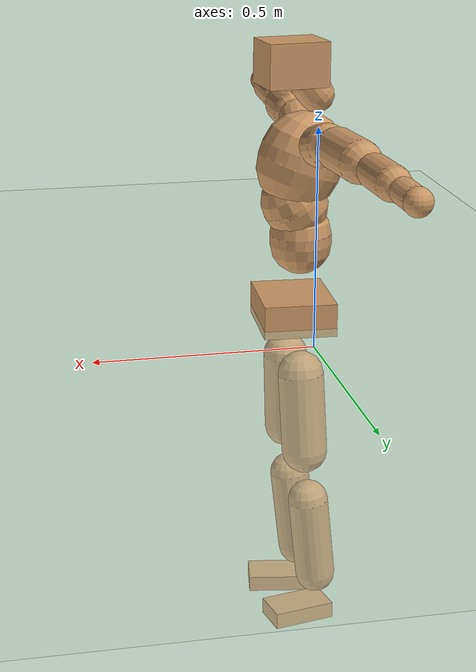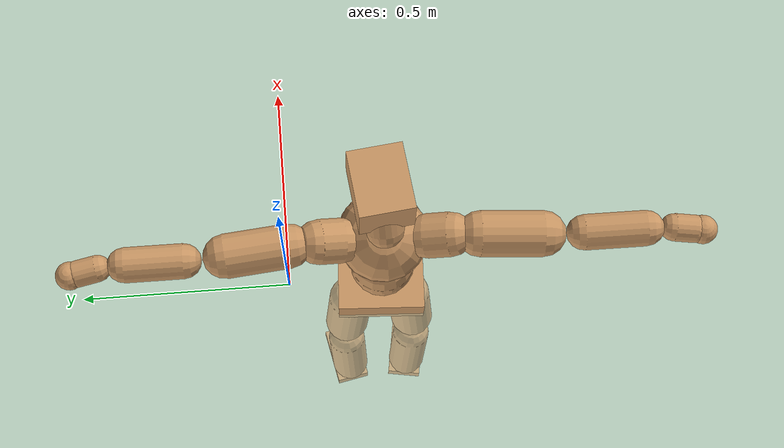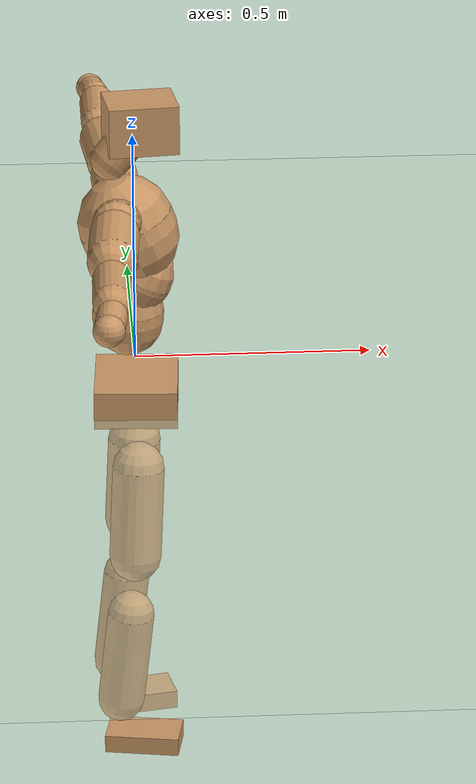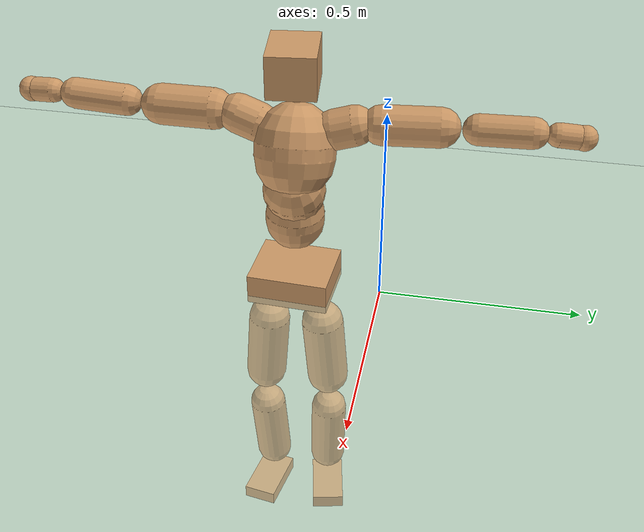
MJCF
<mujoco model="humanoid">
  <compiler coordinate="local" angle="radian"/>
  <default>
    <joint damping="0.0" armature="0.01" stiffness="0.0" limited="true"/>
    <geom conaffinity="1" condim="3" contype="7" margin="0.001" rgba="0.8 0.6 .4 1"/>
  </default>
  <asset>
    <texture type="skybox" builtin="gradient" rgb1=".4 .5 .6" rgb2="0 0 0" width="100" height="100"/>
    <texture builtin="flat" height="1278" mark="cross" markrgb="1 1 1" name="texgeom" random="0.01" rgb1="0.8 0.6 0.4" rgb2="0.8 0.6 0.4" type="cube" width="127"/>
    <texture builtin="checker" height="100" name="texplane" rgb1="0 0 0" rgb2="0.8 0.8 0.8" type="2d" width="100"/>
    <material name="MatPlane" reflectance="0.5" shininess="1" specular="1" texrepeat="60 60" texture="texplane"/>
    <material name="geom" texture="texgeom" texuniform="true"/>
  </asset>
  <worldbody>
    <light cutoff="100" diffuse="1 1 1" dir="-0 0 -1.3" directional="true" exponent="1" pos="0 0 1.3" specular=".1 .1 .1"/>
    <geom conaffinity="1" condim="3" name="floor" pos="0 0 0" rgba="0.8 0.9 0.8 1" size="100 100 .2" type="plane" material="MatPlane"/>
    <body name="Pelvis" pos="-0.0005 -0.2202 0.0305">
      <freejoint name="Pelvis"/>
      <geom type="box" contype="1" conaffinity="1" density="500" pos="-0.0047 0.0003 -0.0126" size="0.0856 0.1019 0.0393" quat="0.9996 0.0000 0.0000 -0.0265" name="Pelvis"/>
      <body name="L_Hip" pos="-0.0053 0.0674 -0.0881">
        <joint name="L_Hip_x" type="hinge" pos="0 0 0" axis="1 0 0" stiffness="800" damping="80" armature="0.02" range="-180.0000 180.0000"/>
        <joint name="L_Hip_y" type="hinge" pos="0 0 0" axis="0 1 0" stiffness="800" damping="80" armature="0.02" range="-180.0000 180.0000"/>
        <joint name="L_Hip_z" type="hinge" pos="0 0 0" axis="0 0 1" stiffness="800" damping="80" armature="0.02" range="-180.0000 180.0000"/>
        <geom type="capsule" contype="1" conaffinity="1" density="500" fromto="-0.0029 0.0045 -0.0641 -0.0118 0.0179 -0.2566" size="0.0547" name="L_Hip"/>
        <body name="L_Knee" pos="-0.0147 0.0224 -0.3207">
          <joint name="L_Knee_x" type="hinge" pos="0 0 0" axis="1 0 0" stiffness="800" damping="80" armature="0.02" range="-180.0000 180.0000"/>
          <joint name="L_Knee_y" type="hinge" pos="0 0 0" axis="0 1 0" stiffness="800" damping="80" armature="0.02" range="-180.0000 180.0000"/>
          <joint name="L_Knee_z" type="hinge" pos="0 0 0" axis="0 0 1" stiffness="800" damping="80" armature="0.02" range="-180.0000 180.0000"/>
          <geom type="capsule" contype="1" conaffinity="1" density="500" fromto="-0.0078 -0.0024 -0.0682 -0.0313 -0.0094 -0.2730" size="0.0485" name="L_Knee"/>
          <body name="L_Ankle" pos="-0.0391 -0.0118 -0.3412">
            <joint name="L_Ankle_x" type="hinge" pos="0 0 0" axis="1 0 0" stiffness="800" damping="80" armature="0.02" range="-180.0000 180.0000"/>
            <joint name="L_Ankle_y" type="hinge" pos="0 0 0" axis="0 1 0" stiffness="800" damping="80" armature="0.02" range="-180.0000 180.0000"/>
            <joint name="L_Ankle_z" type="hinge" pos="0 0 0" axis="0 0 1" stiffness="800" damping="80" armature="0.02" range="-180.0000 180.0000"/>
            <geom type="box" contype="1" conaffinity="1" density="500" pos="0.0533 0.0106 -0.0250" size="0.0756 0.0436 0.0198" quat="0.9952 0.0000 0.0000 0.0982" name="L_Ankle"/>
            <body name="L_Toe" pos="0.1065 0.0212 -0.05">
              <joint name="L_Toe_x" type="hinge" pos="0 0 0" axis="1 0 0" stiffness="500" damping="50" armature="0.02" range="-180.0000 180.0000"/>
              <joint name="L_Toe_y" type="hinge" pos="0 0 0" axis="0 1 0" stiffness="500" damping="50" armature="0.02" range="-180.0000 180.0000"/>
              <joint name="L_Toe_z" type="hinge" pos="0 0 0" axis="0 0 1" stiffness="500" damping="50" armature="0.02" range="-180.0000 180.0000"/>
              <geom type="box" contype="1" conaffinity="1" density="500" pos="0.0000 0.0000 0.0241" size="0.0009 0.0022 0.0009" quat="0.9945 0.0000 0.0000 0.1052" name="L_Toe"/>
            </body>
          </body>
        </body>
      </body>
      <body name="R_Hip" pos="-0.0017 -0.0649 -0.0889">
        <joint name="R_Hip_x" type="hinge" pos="0 0 0" axis="1 0 0" stiffness="800" damping="80" armature="0.02" range="-180.0000 180.0000"/>
        <joint name="R_Hip_y" type="hinge" pos="0 0 0" axis="0 1 0" stiffness="800" damping="80" armature="0.02" range="-180.0000 180.0000"/>
        <joint name="R_Hip_z" type="hinge" pos="0 0 0" axis="0 0 1" stiffness="800" damping="80" armature="0.02" range="-180.0000 180.0000"/>
        <geom type="capsule" contype="1" conaffinity="1" density="500" fromto="-0.0031 -0.0055 -0.0652 -0.0123 -0.0220 -0.2607" size="0.054" name="R_Hip"/>
        <body name="R_Knee" pos="-0.0154 -0.0275 -0.3258">
          <joint name="R_Knee_x" type="hinge" pos="0 0 0" axis="1 0 0" stiffness="800" damping="80" armature="0.02" range="-180.0000 180.0000"/>
          <joint name="R_Knee_y" type="hinge" pos="0 0 0" axis="0 1 0" stiffness="800" damping="80" armature="0.02" range="-180.0000 180.0000"/>
          <joint name="R_Knee_z" type="hinge" pos="0 0 0" axis="0 0 1" stiffness="800" damping="80" armature="0.02" range="-180.0000 180.0000"/>
          <geom type="capsule" contype="1" conaffinity="1" density="500" fromto="-0.0076 0.0028 -0.0687 -0.0303 0.0113 -0.2749" size="0.0488" name="R_Knee"/>
          <body name="R_Ankle" pos="-0.0379 0.0141 -0.3436">
            <joint name="R_Ankle_x" type="hinge" pos="0 0 0" axis="1 0 0" stiffness="800" damping="80" armature="0.02" range="-180.0000 180.0000"/>
            <joint name="R_Ankle_y" type="hinge" pos="0 0 0" axis="0 1 0" stiffness="800" damping="80" armature="0.02" range="-180.0000 180.0000"/>
            <joint name="R_Ankle_z" type="hinge" pos="0 0 0" axis="0 0 1" stiffness="800" damping="80" armature="0.02" range="-180.0000 180.0000"/>
            <geom type="box" contype="1" conaffinity="1" density="500" pos="0.0552 -0.0095 -0.0212" size="0.0781 0.0448 0.0192" quat="0.9964 0.0000 0.0000 -0.0848" name="R_Ankle"/>
            <body name="R_Toe" pos="0.1104 -0.0189 -0.0424">
              <joint name="R_Toe_x" type="hinge" pos="0 0 0" axis="1 0 0" stiffness="500" damping="50" armature="0.02" range="-180.0000 180.0000"/>
              <joint name="R_Toe_y" type="hinge" pos="0 0 0" axis="0 1 0" stiffness="500" damping="50" armature="0.02" range="-180.0000 180.0000"/>
              <joint name="R_Toe_z" type="hinge" pos="0 0 0" axis="0 0 1" stiffness="500" damping="50" armature="0.02" range="-180.0000 180.0000"/>
              <geom type="box" contype="1" conaffinity="1" density="500" pos="0.0000 0.0000 0.0226" size="0.001 0.0023 0.001" quat="0.9972 0.0000 0.0000 -0.0746" name="R_Toe"/>
            </body>
          </body>
        </body>
      </body>
      <body name="Torso" pos="-0.0214 -0.0009 0.1016">
        <joint name="Torso_x" type="hinge" pos="0 0 0" axis="1 0 0" stiffness="1000" damping="100" armature="0.02" range="-180.0000 180.0000"/>
        <joint name="Torso_y" type="hinge" pos="0 0 0" axis="0 1 0" stiffness="1000" damping="100" armature="0.02" range="-180.0000 180.0000"/>
        <joint name="Torso_z" type="hinge" pos="0 0 0" axis="0 0 1" stiffness="1000" damping="100" armature="0.02" range="-180.0000 180.0000"/>
        <geom type="capsule" contype="1" conaffinity="1" density="500" fromto="0.0018 0.0014 0.0719 0.0012 0.0010 0.0479" size="0.0732" name="Torso"/>
        <body name="Spine" pos="0.003 0.0024 0.1198">
          <joint name="Spine_x" type="hinge" pos="0 0 0" axis="1 0 0" stiffness="1000" damping="100" armature="0.02" range="-180.0000 180.0000"/>
          <joint name="Spine_y" type="hinge" pos="0 0 0" axis="0 1 0" stiffness="1000" damping="100" armature="0.02" range="-180.0000 180.0000"/>
          <joint name="Spine_z" type="hinge" pos="0 0 0" axis="0 0 1" stiffness="1000" damping="100" armature="0.02" range="-180.0000 180.0000"/>
          <geom type="capsule" contype="1" conaffinity="1" density="500" fromto="0.0179 0.0013 0.0298 0.0120 0.0009 0.0198" size="0.0768" name="Spine"/>
          <body name="Chest" pos="0.0299 0.0022 0.0496">
            <joint name="Chest_x" type="hinge" pos="0 0 0" axis="1 0 0" stiffness="1000" damping="100" armature="0.02" range="-180.0000 180.0000"/>
            <joint name="Chest_y" type="hinge" pos="0 0 0" axis="0 1 0" stiffness="1000" damping="100" armature="0.02" range="-180.0000 180.0000"/>
            <joint name="Chest_z" type="hinge" pos="0 0 0" axis="0 0 1" stiffness="1000" damping="100" armature="0.02" range="-180.0000 180.0000"/>
            <geom type="capsule" contype="1" conaffinity="1" density="500" fromto="-0.0340 -0.0008 0.0926 -0.0227 -0.0005 0.0618" size="0.0987" name="Chest"/>
            <body name="Neck" pos="-0.0722 -0.0014 0.2164">
              <joint name="Neck_x" type="hinge" pos="0 0 0" axis="1 0 0" stiffness="500" damping="50" armature="0.02" range="-180.0000 180.0000"/>
              <joint name="Neck_y" type="hinge" pos="0 0 0" axis="0 1 0" stiffness="500" damping="50" armature="0.02" range="-180.0000 180.0000"/>
              <joint name="Neck_z" type="hinge" pos="0 0 0" axis="0 0 1" stiffness="500" damping="50" armature="0.02" range="-180.0000 180.0000"/>
              <geom type="capsule" contype="1" conaffinity="1" density="500" fromto="0.0092 0.0007 0.0114 0.0369 0.0028 0.0458" size="0.0408" name="Neck"/>
              <body name="Head" pos="0.0461 0.0035 0.0572">
                <joint name="Head_x" type="hinge" pos="0 0 0" axis="1 0 0" stiffness="500" damping="50" armature="0.02" range="-180.0000 180.0000"/>
                <joint name="Head_y" type="hinge" pos="0 0 0" axis="0 1 0" stiffness="500" damping="50" armature="0.02" range="-180.0000 180.0000"/>
                <joint name="Head_z" type="hinge" pos="0 0 0" axis="0 0 1" stiffness="500" damping="50" armature="0.02" range="-180.0000 180.0000"/>
                <geom type="box" contype="1" conaffinity="1" density="500" pos="0.0241 0.0027 0.0296" size="0.0712 0.0577 0.051" quat="0.9984 0.0000 0.0000 0.0565" name="Head"/>
              </body>
            </body>
            <body name="L_Thorax" pos="-0.0473 0.0727 0.1239">
              <joint name="L_Thorax_x" type="hinge" pos="0 0 0" axis="1 0 0" stiffness="500" damping="50" armature="0.02" range="-180.0000 180.0000"/>
              <joint name="L_Thorax_y" type="hinge" pos="0 0 0" axis="0 1 0" stiffness="500" damping="50" armature="0.02" range="-180.0000 180.0000"/>
              <joint name="L_Thorax_z" type="hinge" pos="0 0 0" axis="0 0 1" stiffness="500" damping="50" armature="0.02" range="-180.0000 180.0000"/>
              <geom type="capsule" contype="1" conaffinity="1" density="500" fromto="-0.0014 0.0163 0.0045 -0.0055 0.0651 0.0182" size="0.0485" name="L_Thorax"/>
              <body name="L_Shoulder" pos="-0.0069 0.0814 0.0227">
                <joint name="L_Shoulder_x" type="hinge" pos="0 0 0" axis="1 0 0" stiffness="500" damping="50" armature="0.02" range="-720.0000 720.0000"/>
                <joint name="L_Shoulder_y" type="hinge" pos="0 0 0" axis="0 1 0" stiffness="500" damping="50" armature="0.02" range="-720.0000 720.0000"/>
                <joint name="L_Shoulder_z" type="hinge" pos="0 0 0" axis="0 0 1" stiffness="500" damping="50" armature="0.02" range="-720.0000 720.0000"/>
                <geom type="capsule" contype="1" conaffinity="1" density="500" fromto="-0.0042 0.0451 0.0001 -0.0167 0.1805 0.0005" size="0.0478" name="L_Shoulder"/>
                <body name="L_Elbow" pos="-0.0208 0.2257 0.0007">
                  <joint name="L_Elbow_x" type="hinge" pos="0 0 0" axis="1 0 0" stiffness="500" damping="50" armature="0.02" range="-720.0000 720.0000"/>
                  <joint name="L_Elbow_y" type="hinge" pos="0 0 0" axis="0 1 0" stiffness="500" damping="50" armature="0.02" range="-720.0000 720.0000"/>
                  <joint name="L_Elbow_z" type="hinge" pos="0 0 0" axis="0 0 1" stiffness="500" damping="50" armature="0.02" range="-720.0000 720.0000"/>
                  <geom type="capsule" contype="1" conaffinity="1" density="500" fromto="-0.0002 0.0413 0.0011 -0.0008 0.1653 0.0045" size="0.0375" name="L_Elbow"/>
                  <body name="L_Wrist" pos="-0.001 0.2067 0.0056">
                    <joint name="L_Wrist_x" type="hinge" pos="0 0 0" axis="1 0 0" stiffness="300" damping="30" armature="0.02" range="-180.0000 180.0000"/>
                    <joint name="L_Wrist_y" type="hinge" pos="0 0 0" axis="0 1 0" stiffness="300" damping="30" armature="0.02" range="-180.0000 180.0000"/>
                    <joint name="L_Wrist_z" type="hinge" pos="0 0 0" axis="0 0 1" stiffness="300" damping="30" armature="0.02" range="-180.0000 180.0000"/>
                    <geom type="capsule" contype="1" conaffinity="1" density="500" fromto="-0.0024 0.0149 -0.0017 -0.0097 0.0595 -0.0068" size="0.0287" name="L_Wrist"/>
                    <body name="L_Hand" pos="-0.0121 0.0744 -0.0085">
                      <joint name="L_Hand_x" type="hinge" pos="0 0 0" axis="1 0 0" stiffness="300" damping="30" armature="0.02" range="-180.0000 180.0000"/>
                      <joint name="L_Hand_y" type="hinge" pos="0 0 0" axis="0 1 0" stiffness="300" damping="30" armature="0.02" range="-180.0000 180.0000"/>
                      <joint name="L_Hand_z" type="hinge" pos="0 0 0" axis="0 0 1" stiffness="300" damping="30" armature="0.02" range="-180.0000 180.0000"/>
                      <geom type="sphere" contype="1" conaffinity="1" density="500" size="0.0302" pos="0.0000 0.0000 0.0000" name="L_Hand"/>
                    </body>
                  </body>
                </body>
              </body>
            </body>
            <body name="R_Thorax" pos="-0.0507 -0.0753 0.1228">
              <joint name="R_Thorax_x" type="hinge" pos="0 0 0" axis="1 0 0" stiffness="500" damping="50" armature="0.02" range="-180.0000 180.0000"/>
              <joint name="R_Thorax_y" type="hinge" pos="0 0 0" axis="0 1 0" stiffness="500" damping="50" armature="0.02" range="-180.0000 180.0000"/>
              <joint name="R_Thorax_z" type="hinge" pos="0 0 0" axis="0 0 1" stiffness="500" damping="50" armature="0.02" range="-180.0000 180.0000"/>
              <geom type="capsule" contype="1" conaffinity="1" density="500" fromto="-0.0017 -0.0168 0.0054 -0.0069 -0.0672 0.0214" size="0.0481" name="R_Thorax"/>
              <body name="R_Shoulder" pos="-0.0087 -0.0839 0.0268">
                <joint name="R_Shoulder_x" type="hinge" pos="0 0 0" axis="1 0 0" stiffness="500" damping="50" armature="0.02" range="-720.0000 720.0000"/>
                <joint name="R_Shoulder_y" type="hinge" pos="0 0 0" axis="0 1 0" stiffness="500" damping="50" armature="0.02" range="-720.0000 720.0000"/>
                <joint name="R_Shoulder_z" type="hinge" pos="0 0 0" axis="0 0 1" stiffness="500" damping="50" armature="0.02" range="-720.0000 720.0000"/>
                <geom type="capsule" contype="1" conaffinity="1" density="500" fromto="-0.0029 -0.0442 -0.0016 -0.0116 -0.1768 -0.0063" size="0.0499" name="R_Shoulder"/>
                <body name="R_Elbow" pos="-0.0145 -0.221 -0.0079">
                  <joint name="R_Elbow_x" type="hinge" pos="0 0 0" axis="1 0 0" stiffness="500" damping="50" armature="0.02" range="-720.0000 720.0000"/>
                  <joint name="R_Elbow_y" type="hinge" pos="0 0 0" axis="0 1 0" stiffness="500" damping="50" armature="0.02" range="-720.0000 720.0000"/>
                  <joint name="R_Elbow_z" type="hinge" pos="0 0 0" axis="0 0 1" stiffness="500" damping="50" armature="0.02" range="-720.0000 720.0000"/>
                  <geom type="capsule" contype="1" conaffinity="1" density="500" fromto="-0.0008 -0.0435 0.0018 -0.0033 -0.1740 0.0070" size="0.0382" name="R_Elbow"/>
                  <body name="R_Wrist" pos="-0.0041 -0.2175 0.0088">
                    <joint name="R_Wrist_x" type="hinge" pos="0 0 0" axis="1 0 0" stiffness="300" damping="30" armature="0.02" range="-180.0000 180.0000"/>
                    <joint name="R_Wrist_y" type="hinge" pos="0 0 0" axis="0 1 0" stiffness="300" damping="30" armature="0.02" range="-180.0000 180.0000"/>
                    <joint name="R_Wrist_z" type="hinge" pos="0 0 0" axis="0 0 1" stiffness="300" damping="30" armature="0.02" range="-180.0000 180.0000"/>
                    <geom type="capsule" contype="1" conaffinity="1" density="500" fromto="-0.0020 -0.0153 -0.0013 -0.0079 -0.0611 -0.0054" size="0.0298" name="R_Wrist"/>
                    <body name="R_Hand" pos="-0.0098 -0.0764 -0.0067">
                      <joint name="R_Hand_x" type="hinge" pos="0 0 0" axis="1 0 0" stiffness="300" damping="30" armature="0.02" range="-180.0000 180.0000"/>
                      <joint name="R_Hand_y" type="hinge" pos="0 0 0" axis="0 1 0" stiffness="300" damping="30" armature="0.02" range="-180.0000 180.0000"/>
                      <joint name="R_Hand_z" type="hinge" pos="0 0 0" axis="0 0 1" stiffness="300" damping="30" armature="0.02" range="-180.0000 180.0000"/>
                      <geom type="sphere" contype="1" conaffinity="1" density="500" size="0.0310" pos="0.0000 0.0000 0.0000" name="R_Hand"/>
                    </body>
                  </body>
                </body>
              </body>
            </body>
          </body>
        </body>
      </body>
    </body>
  </worldbody>
  <actuator>
    <motor name="L_Hip_x" joint="L_Hip_x" gear="500"/>
    <motor name="L_Hip_y" joint="L_Hip_y" gear="500"/>
    <motor name="L_Hip_z" joint="L_Hip_z" gear="500"/>
    <motor name="L_Knee_x" joint="L_Knee_x" gear="500"/>
    <motor name="L_Knee_y" joint="L_Knee_y" gear="500"/>
    <motor name="L_Knee_z" joint="L_Knee_z" gear="500"/>
    <motor name="L_Ankle_x" joint="L_Ankle_x" gear="500"/>
    <motor name="L_Ankle_y" joint="L_Ankle_y" gear="500"/>
    <motor name="L_Ankle_z" joint="L_Ankle_z" gear="500"/>
    <motor name="L_Toe_x" joint="L_Toe_x" gear="500"/>
    <motor name="L_Toe_y" joint="L_Toe_y" gear="500"/>
    <motor name="L_Toe_z" joint="L_Toe_z" gear="500"/>
    <motor name="R_Hip_x" joint="R_Hip_x" gear="500"/>
    <motor name="R_Hip_y" joint="R_Hip_y" gear="500"/>
    <motor name="R_Hip_z" joint="R_Hip_z" gear="500"/>
    <motor name="R_Knee_x" joint="R_Knee_x" gear="500"/>
    <motor name="R_Knee_y" joint="R_Knee_y" gear="500"/>
    <motor name="R_Knee_z" joint="R_Knee_z" gear="500"/>
    <motor name="R_Ankle_x" joint="R_Ankle_x" gear="500"/>
    <motor name="R_Ankle_y" joint="R_Ankle_y" gear="500"/>
    <motor name="R_Ankle_z" joint="R_Ankle_z" gear="500"/>
    <motor name="R_Toe_x" joint="R_Toe_x" gear="500"/>
    <motor name="R_Toe_y" joint="R_Toe_y" gear="500"/>
    <motor name="R_Toe_z" joint="R_Toe_z" gear="500"/>
    <motor name="Torso_x" joint="Torso_x" gear="500"/>
    <motor name="Torso_y" joint="Torso_y" gear="500"/>
    <motor name="Torso_z" joint="Torso_z" gear="500"/>
    <motor name="Spine_x" joint="Spine_x" gear="500"/>
    <motor name="Spine_y" joint="Spine_y" gear="500"/>
    <motor name="Spine_z" joint="Spine_z" gear="500"/>
    <motor name="Chest_x" joint="Chest_x" gear="500"/>
    <motor name="Chest_y" joint="Chest_y" gear="500"/>
    <motor name="Chest_z" joint="Chest_z" gear="500"/>
    <motor name="Neck_x" joint="Neck_x" gear="500"/>
    <motor name="Neck_y" joint="Neck_y" gear="500"/>
    <motor name="Neck_z" joint="Neck_z" gear="500"/>
    <motor name="Head_x" joint="Head_x" gear="500"/>
    <motor name="Head_y" joint="Head_y" gear="500"/>
    <motor name="Head_z" joint="Head_z" gear="500"/>
    <motor name="L_Thorax_x" joint="L_Thorax_x" gear="500"/>
    <motor name="L_Thorax_y" joint="L_Thorax_y" gear="500"/>
    <motor name="L_Thorax_z" joint="L_Thorax_z" gear="500"/>
    <motor name="L_Shoulder_x" joint="L_Shoulder_x" gear="500"/>
    <motor name="L_Shoulder_y" joint="L_Shoulder_y" gear="500"/>
    <motor name="L_Shoulder_z" joint="L_Shoulder_z" gear="500"/>
    <motor name="L_Elbow_x" joint="L_Elbow_x" gear="500"/>
    <motor name="L_Elbow_y" joint="L_Elbow_y" gear="500"/>
    <motor name="L_Elbow_z" joint="L_Elbow_z" gear="500"/>
    <motor name="L_Wrist_x" joint="L_Wrist_x" gear="500"/>
    <motor name="L_Wrist_y" joint="L_Wrist_y" gear="500"/>
    <motor name="L_Wrist_z" joint="L_Wrist_z" gear="500"/>
    <motor name="L_Hand_x" joint="L_Hand_x" gear="500"/>
    <motor name="L_Hand_y" joint="L_Hand_y" gear="500"/>
    <motor name="L_Hand_z" joint="L_Hand_z" gear="500"/>
    <motor name="R_Thorax_x" joint="R_Thorax_x" gear="500"/>
    <motor name="R_Thorax_y" joint="R_Thorax_y" gear="500"/>
    <motor name="R_Thorax_z" joint="R_Thorax_z" gear="500"/>
    <motor name="R_Shoulder_x" joint="R_Shoulder_x" gear="500"/>
    <motor name="R_Shoulder_y" joint="R_Shoulder_y" gear="500"/>
    <motor name="R_Shoulder_z" joint="R_Shoulder_z" gear="500"/>
    <motor name="R_Elbow_x" joint="R_Elbow_x" gear="500"/>
    <motor name="R_Elbow_y" joint="R_Elbow_y" gear="500"/>
    <motor name="R_Elbow_z" joint="R_Elbow_z" gear="500"/>
    <motor name="R_Wrist_x" joint="R_Wrist_x" gear="500"/>
    <motor name="R_Wrist_y" joint="R_Wrist_y" gear="500"/>
    <motor name="R_Wrist_z" joint="R_Wrist_z" gear="500"/>
    <motor name="R_Hand_x" joint="R_Hand_x" gear="500"/>
    <motor name="R_Hand_y" joint="R_Hand_y" gear="500"/>
    <motor name="R_Hand_z" joint="R_Hand_z" gear="500"/>
  </actuator>
  <contact>
    <exclude body1="Torso" body2="Chest"/>
    <exclude body1="Head" body2="Chest"/>
    <exclude body1="R_Knee" body2="R_Toe"/>
    <exclude body1="R_Knee" body2="L_Ankle"/>
    <exclude body1="R_Knee" body2="L_Toe"/>
    <exclude body1="L_Knee" body2="L_Toe"/>
    <exclude body1="L_Knee" body2="R_Ankle"/>
    <exclude body1="L_Knee" body2="R_Toe"/>
    <exclude body1="L_Shoulder" body2="Chest"/>
    <exclude body1="R_Shoulder" body2="Chest"/>
  </contact>
  <sensor/>
  <size njmax="700" nconmax="700"/>
</mujoco>
